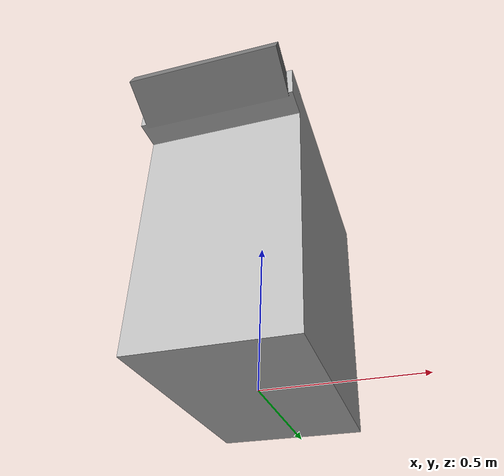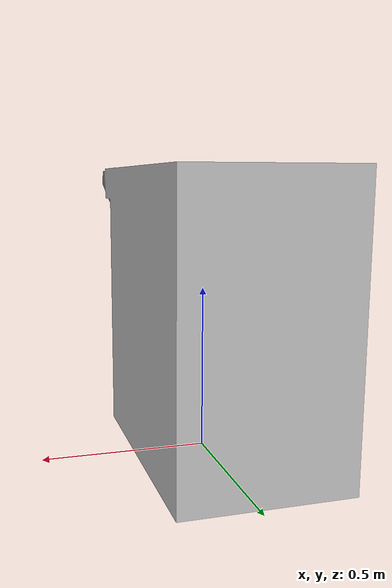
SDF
<?xml version='1.0'?>
<sdf version="1.5">

  <model name="service_cart">
    <static>false</static>
    <link name="link">

      <inertial>
        <mass>10</mass>
        <inertia>
          <ixx>1.0</ixx>       <!-- for a box: ixx = 0.083 * mass * (y*y + z*z) -->
          <ixy>0.0</ixy>       <!-- for a box: ixy = 0 -->
          <ixz>0.0</ixz>       <!-- for a box: ixz = 0 -->
          <iyy>1.0</iyy>       <!-- for a box: iyy = 0.083 * mass * (x*x + z*z) -->
          <iyz>0.0</iyz>       <!-- for a box: iyz = 0 -->
          <izz>1.0</izz>      <!-- for a box: izz = 0.083 * mass * (x*x + y*y) -->
        </inertia>
      </inertial>

      <collision name="collision">
        <geometry>
          <mesh>
            <uri>model://service_cart/service_cart_collision.dae</uri>
          </mesh>
        </geometry>
      </collision>

      <visual name="visual">
        <geometry>
          <mesh>
            <uri>model://service_cart/service_cart.dae</uri>
          </mesh>
        </geometry>
      </visual>

    </link>
  </model>

</sdf>
